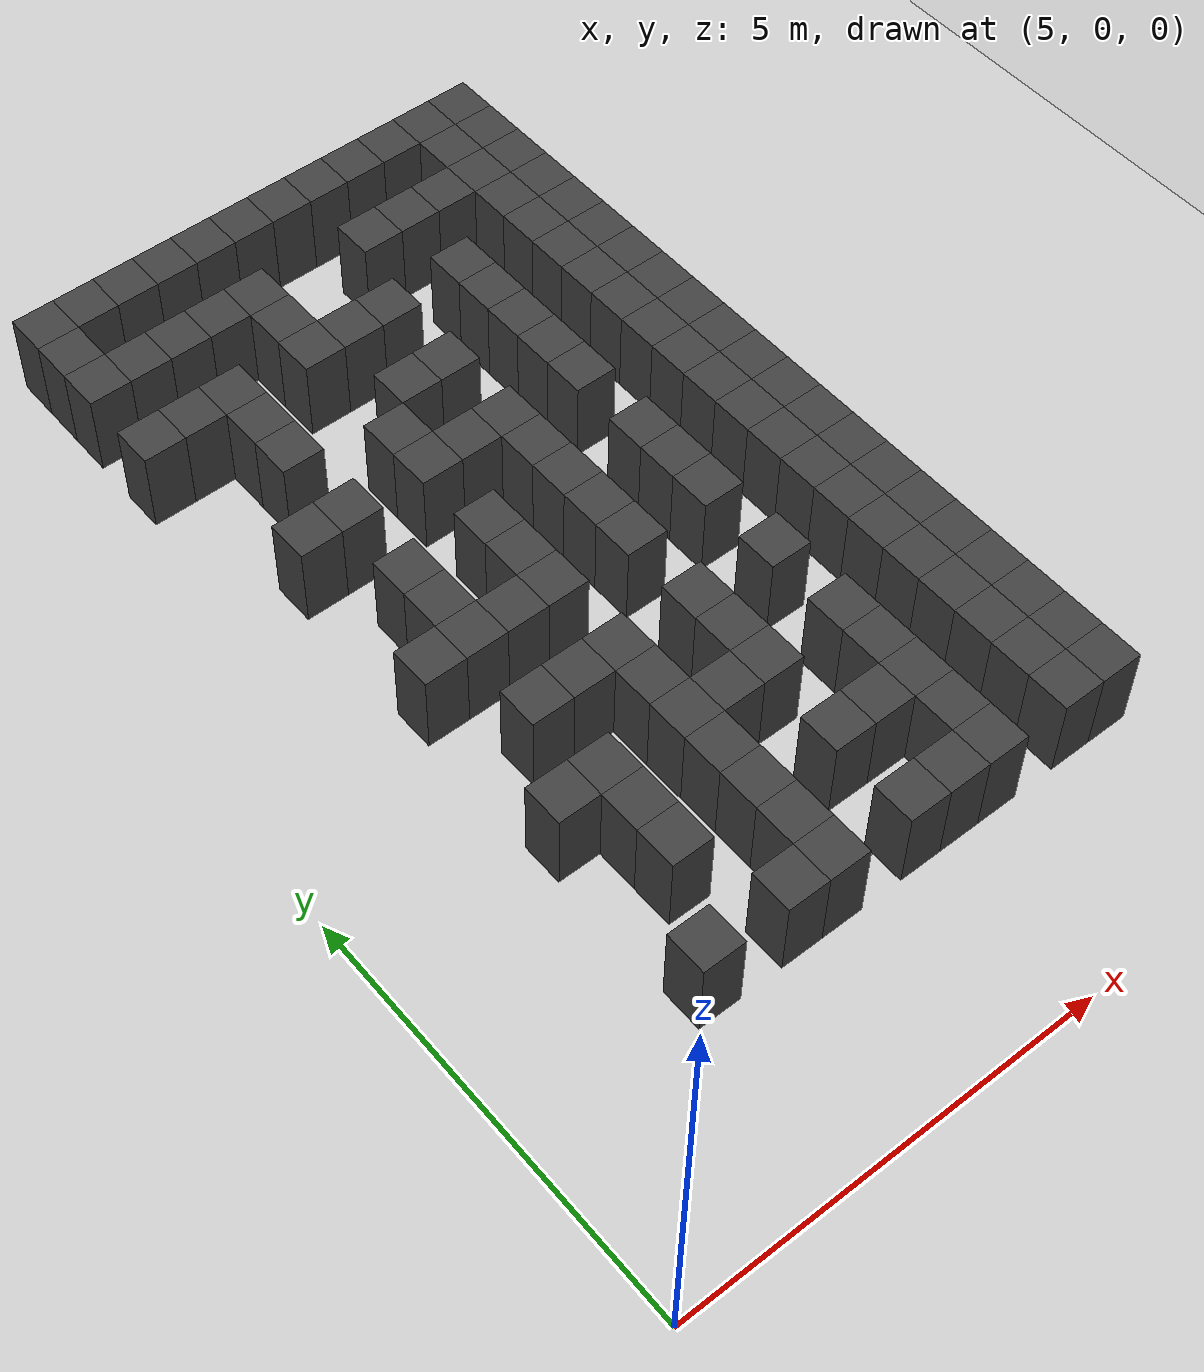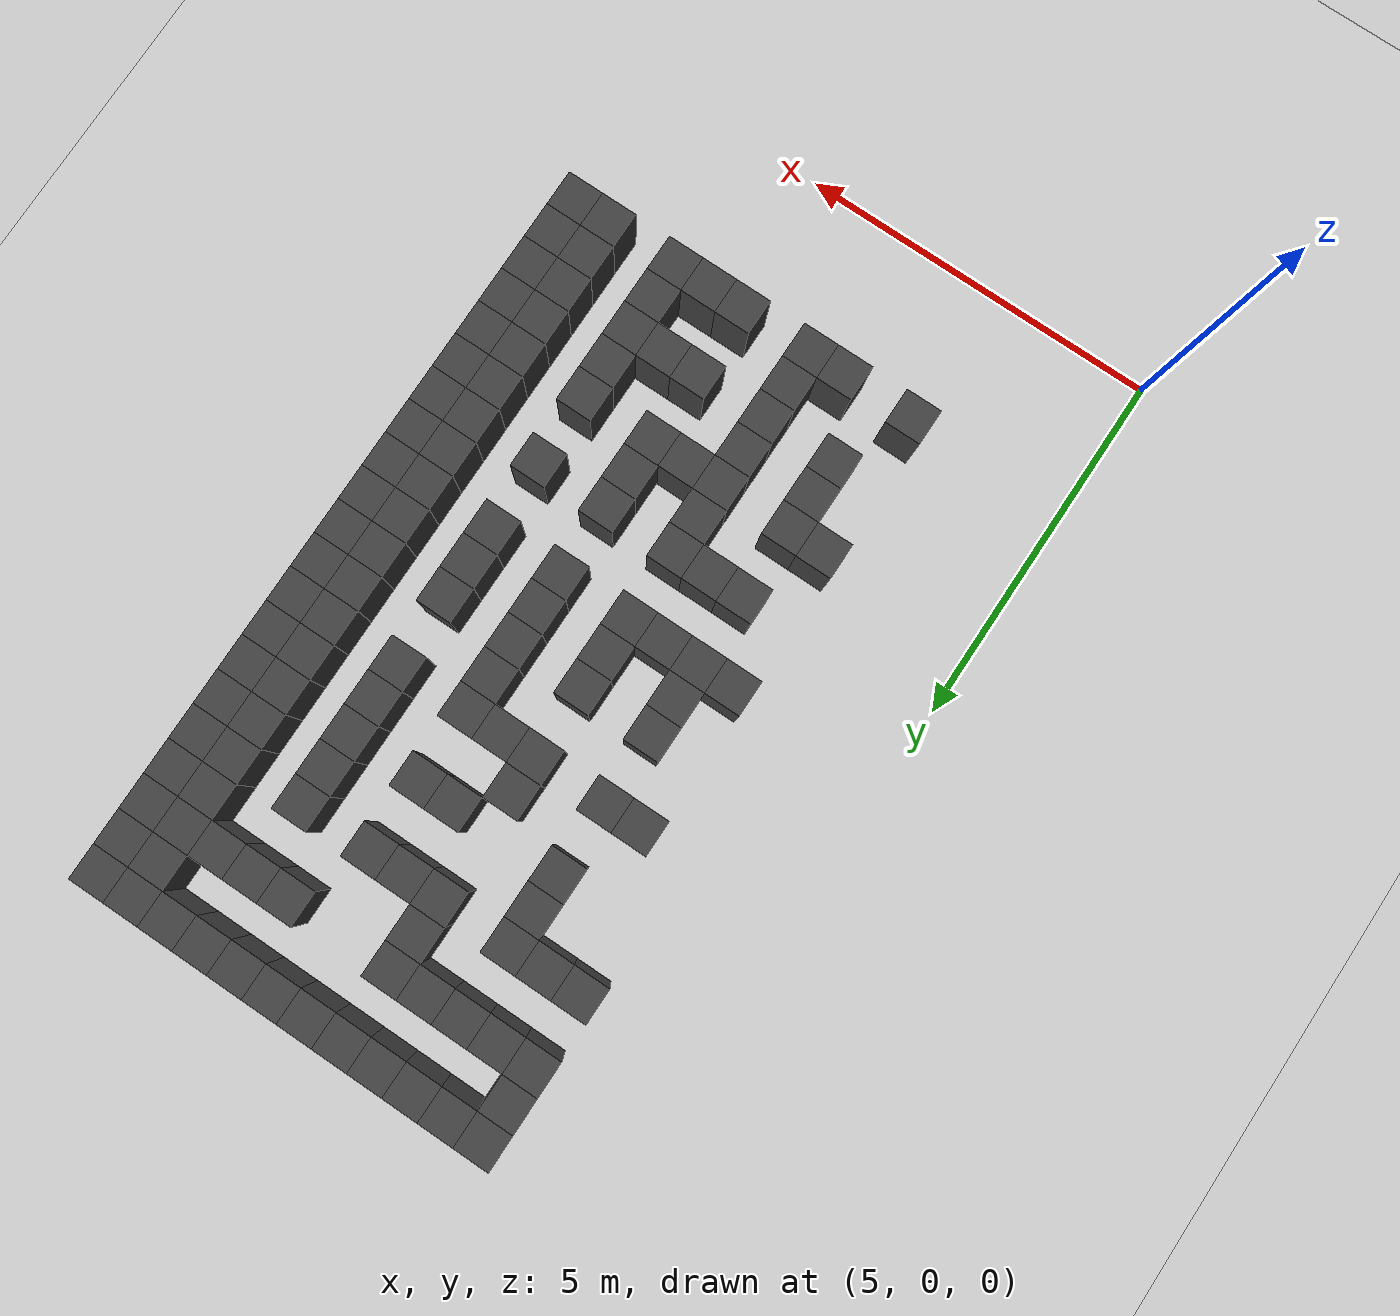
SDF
<sdf version="1.7">
 <world name="map_17508">
  <model name="ground_plane">
   <static>true</static>
   <link name="link">
    <collision name="collision">
     <geometry><plane><normal>0 0 1</normal><size>200 200</size></plane></geometry>
    </collision>
    <visual name="visual">
     <geometry><plane><normal>0 0 1</normal><size>200 200</size></plane></geometry>
     <material><ambient>0.8 0.8 0.8 1</ambient><diffuse>0.8 0.8 0.8 1</diffuse></material>
    </visual>
   </link>
  </model>
  <model name="maze_environment">
   <static>true</static>
   <link name="wall_38">
    <pose>6.750 12.250 0.500 0 0 0</pose>
    <collision name="col"><geometry><box><size>0.5 0.5 1.0</size></box></geometry></collision>
    <visual name="vis">
     <geometry><box><size>0.5 0.5 1.0</size></box></geometry>
     <material><ambient>0.15 0.15 0.15 1</ambient><diffuse>0.25 0.25 0.25 1</diffuse></material>
    </visual>
   </link>
   <link name="wall_39">
    <pose>7.250 12.250 0.500 0 0 0</pose>
    <collision name="col"><geometry><box><size>0.5 0.5 1.0</size></box></geometry></collision>
    <visual name="vis">
     <geometry><box><size>0.5 0.5 1.0</size></box></geometry>
     <material><ambient>0.15 0.15 0.15 1</ambient><diffuse>0.25 0.25 0.25 1</diffuse></material>
    </visual>
   </link>
   <link name="wall_40">
    <pose>7.750 12.250 0.500 0 0 0</pose>
    <collision name="col"><geometry><box><size>0.5 0.5 1.0</size></box></geometry></collision>
    <visual name="vis">
     <geometry><box><size>0.5 0.5 1.0</size></box></geometry>
     <material><ambient>0.15 0.15 0.15 1</ambient><diffuse>0.25 0.25 0.25 1</diffuse></material>
    </visual>
   </link>
   <link name="wall_41">
    <pose>8.250 12.250 0.500 0 0 0</pose>
    <collision name="col"><geometry><box><size>0.5 0.5 1.0</size></box></geometry></collision>
    <visual name="vis">
     <geometry><box><size>0.5 0.5 1.0</size></box></geometry>
     <material><ambient>0.15 0.15 0.15 1</ambient><diffuse>0.25 0.25 0.25 1</diffuse></material>
    </visual>
   </link>
   <link name="wall_42">
    <pose>8.750 12.250 0.500 0 0 0</pose>
    <collision name="col"><geometry><box><size>0.5 0.5 1.0</size></box></geometry></collision>
    <visual name="vis">
     <geometry><box><size>0.5 0.5 1.0</size></box></geometry>
     <material><ambient>0.15 0.15 0.15 1</ambient><diffuse>0.25 0.25 0.25 1</diffuse></material>
    </visual>
   </link>
   <link name="wall_43">
    <pose>9.250 12.250 0.500 0 0 0</pose>
    <collision name="col"><geometry><box><size>0.5 0.5 1.0</size></box></geometry></collision>
    <visual name="vis">
     <geometry><box><size>0.5 0.5 1.0</size></box></geometry>
     <material><ambient>0.15 0.15 0.15 1</ambient><diffuse>0.25 0.25 0.25 1</diffuse></material>
    </visual>
   </link>
   <link name="wall_44">
    <pose>9.750 12.250 0.500 0 0 0</pose>
    <collision name="col"><geometry><box><size>0.5 0.5 1.0</size></box></geometry></collision>
    <visual name="vis">
     <geometry><box><size>0.5 0.5 1.0</size></box></geometry>
     <material><ambient>0.15 0.15 0.15 1</ambient><diffuse>0.25 0.25 0.25 1</diffuse></material>
    </visual>
   </link>
   <link name="wall_45">
    <pose>10.250 12.250 0.500 0 0 0</pose>
    <collision name="col"><geometry><box><size>0.5 0.5 1.0</size></box></geometry></collision>
    <visual name="vis">
     <geometry><box><size>0.5 0.5 1.0</size></box></geometry>
     <material><ambient>0.15 0.15 0.15 1</ambient><diffuse>0.25 0.25 0.25 1</diffuse></material>
    </visual>
   </link>
   <link name="wall_46">
    <pose>10.750 12.250 0.500 0 0 0</pose>
    <collision name="col"><geometry><box><size>0.5 0.5 1.0</size></box></geometry></collision>
    <visual name="vis">
     <geometry><box><size>0.5 0.5 1.0</size></box></geometry>
     <material><ambient>0.15 0.15 0.15 1</ambient><diffuse>0.25 0.25 0.25 1</diffuse></material>
    </visual>
   </link>
   <link name="wall_47">
    <pose>11.250 12.250 0.500 0 0 0</pose>
    <collision name="col"><geometry><box><size>0.5 0.5 1.0</size></box></geometry></collision>
    <visual name="vis">
     <geometry><box><size>0.5 0.5 1.0</size></box></geometry>
     <material><ambient>0.15 0.15 0.15 1</ambient><diffuse>0.25 0.25 0.25 1</diffuse></material>
    </visual>
   </link>
   <link name="wall_48">
    <pose>11.750 12.250 0.500 0 0 0</pose>
    <collision name="col"><geometry><box><size>0.5 0.5 1.0</size></box></geometry></collision>
    <visual name="vis">
     <geometry><box><size>0.5 0.5 1.0</size></box></geometry>
     <material><ambient>0.15 0.15 0.15 1</ambient><diffuse>0.25 0.25 0.25 1</diffuse></material>
    </visual>
   </link>
   <link name="wall_49">
    <pose>12.250 12.250 0.500 0 0 0</pose>
    <collision name="col"><geometry><box><size>0.5 0.5 1.0</size></box></geometry></collision>
    <visual name="vis">
     <geometry><box><size>0.5 0.5 1.0</size></box></geometry>
     <material><ambient>0.15 0.15 0.15 1</ambient><diffuse>0.25 0.25 0.25 1</diffuse></material>
    </visual>
   </link>
   <link name="wall_55">
    <pose>6.750 11.750 0.500 0 0 0</pose>
    <collision name="col"><geometry><box><size>0.5 0.5 1.0</size></box></geometry></collision>
    <visual name="vis">
     <geometry><box><size>0.5 0.5 1.0</size></box></geometry>
     <material><ambient>0.15 0.15 0.15 1</ambient><diffuse>0.25 0.25 0.25 1</diffuse></material>
    </visual>
   </link>
   <link name="wall_56">
    <pose>11.750 11.750 0.500 0 0 0</pose>
    <collision name="col"><geometry><box><size>0.5 0.5 1.0</size></box></geometry></collision>
    <visual name="vis">
     <geometry><box><size>0.5 0.5 1.0</size></box></geometry>
     <material><ambient>0.15 0.15 0.15 1</ambient><diffuse>0.25 0.25 0.25 1</diffuse></material>
    </visual>
   </link>
   <link name="wall_57">
    <pose>12.250 11.750 0.500 0 0 0</pose>
    <collision name="col"><geometry><box><size>0.5 0.5 1.0</size></box></geometry></collision>
    <visual name="vis">
     <geometry><box><size>0.5 0.5 1.0</size></box></geometry>
     <material><ambient>0.15 0.15 0.15 1</ambient><diffuse>0.25 0.25 0.25 1</diffuse></material>
    </visual>
   </link>
   <link name="wall_84">
    <pose>6.750 11.250 0.500 0 0 0</pose>
    <collision name="col"><geometry><box><size>0.5 0.5 1.0</size></box></geometry></collision>
    <visual name="vis">
     <geometry><box><size>0.5 0.5 1.0</size></box></geometry>
     <material><ambient>0.15 0.15 0.15 1</ambient><diffuse>0.25 0.25 0.25 1</diffuse></material>
    </visual>
   </link>
   <link name="wall_85">
    <pose>7.250 11.250 0.500 0 0 0</pose>
    <collision name="col"><geometry><box><size>0.5 0.5 1.0</size></box></geometry></collision>
    <visual name="vis">
     <geometry><box><size>0.5 0.5 1.0</size></box></geometry>
     <material><ambient>0.15 0.15 0.15 1</ambient><diffuse>0.25 0.25 0.25 1</diffuse></material>
    </visual>
   </link>
   <link name="wall_86">
    <pose>7.750 11.250 0.500 0 0 0</pose>
    <collision name="col"><geometry><box><size>0.5 0.5 1.0</size></box></geometry></collision>
    <visual name="vis">
     <geometry><box><size>0.5 0.5 1.0</size></box></geometry>
     <material><ambient>0.15 0.15 0.15 1</ambient><diffuse>0.25 0.25 0.25 1</diffuse></material>
    </visual>
   </link>
   <link name="wall_87">
    <pose>8.250 11.250 0.500 0 0 0</pose>
    <collision name="col"><geometry><box><size>0.5 0.5 1.0</size></box></geometry></collision>
    <visual name="vis">
     <geometry><box><size>0.5 0.5 1.0</size></box></geometry>
     <material><ambient>0.15 0.15 0.15 1</ambient><diffuse>0.25 0.25 0.25 1</diffuse></material>
    </visual>
   </link>
   <link name="wall_88">
    <pose>8.750 11.250 0.500 0 0 0</pose>
    <collision name="col"><geometry><box><size>0.5 0.5 1.0</size></box></geometry></collision>
    <visual name="vis">
     <geometry><box><size>0.5 0.5 1.0</size></box></geometry>
     <material><ambient>0.15 0.15 0.15 1</ambient><diffuse>0.25 0.25 0.25 1</diffuse></material>
    </visual>
   </link>
   <link name="wall_89">
    <pose>10.250 11.250 0.500 0 0 0</pose>
    <collision name="col"><geometry><box><size>0.5 0.5 1.0</size></box></geometry></collision>
    <visual name="vis">
     <geometry><box><size>0.5 0.5 1.0</size></box></geometry>
     <material><ambient>0.15 0.15 0.15 1</ambient><diffuse>0.25 0.25 0.25 1</diffuse></material>
    </visual>
   </link>
   <link name="wall_90">
    <pose>10.750 11.250 0.500 0 0 0</pose>
    <collision name="col"><geometry><box><size>0.5 0.5 1.0</size></box></geometry></collision>
    <visual name="vis">
     <geometry><box><size>0.5 0.5 1.0</size></box></geometry>
     <material><ambient>0.15 0.15 0.15 1</ambient><diffuse>0.25 0.25 0.25 1</diffuse></material>
    </visual>
   </link>
   <link name="wall_91">
    <pose>11.250 11.250 0.500 0 0 0</pose>
    <collision name="col"><geometry><box><size>0.5 0.5 1.0</size></box></geometry></collision>
    <visual name="vis">
     <geometry><box><size>0.5 0.5 1.0</size></box></geometry>
     <material><ambient>0.15 0.15 0.15 1</ambient><diffuse>0.25 0.25 0.25 1</diffuse></material>
    </visual>
   </link>
   <link name="wall_92">
    <pose>11.750 11.250 0.500 0 0 0</pose>
    <collision name="col"><geometry><box><size>0.5 0.5 1.0</size></box></geometry></collision>
    <visual name="vis">
     <geometry><box><size>0.5 0.5 1.0</size></box></geometry>
     <material><ambient>0.15 0.15 0.15 1</ambient><diffuse>0.25 0.25 0.25 1</diffuse></material>
    </visual>
   </link>
   <link name="wall_93">
    <pose>12.250 11.250 0.500 0 0 0</pose>
    <collision name="col"><geometry><box><size>0.5 0.5 1.0</size></box></geometry></collision>
    <visual name="vis">
     <geometry><box><size>0.5 0.5 1.0</size></box></geometry>
     <material><ambient>0.15 0.15 0.15 1</ambient><diffuse>0.25 0.25 0.25 1</diffuse></material>
    </visual>
   </link>
   <link name="wall_102">
    <pose>8.750 10.750 0.500 0 0 0</pose>
    <collision name="col"><geometry><box><size>0.5 0.5 1.0</size></box></geometry></collision>
    <visual name="vis">
     <geometry><box><size>0.5 0.5 1.0</size></box></geometry>
     <material><ambient>0.15 0.15 0.15 1</ambient><diffuse>0.25 0.25 0.25 1</diffuse></material>
    </visual>
   </link>
   <link name="wall_103">
    <pose>11.750 10.750 0.500 0 0 0</pose>
    <collision name="col"><geometry><box><size>0.5 0.5 1.0</size></box></geometry></collision>
    <visual name="vis">
     <geometry><box><size>0.5 0.5 1.0</size></box></geometry>
     <material><ambient>0.15 0.15 0.15 1</ambient><diffuse>0.25 0.25 0.25 1</diffuse></material>
    </visual>
   </link>
   <link name="wall_104">
    <pose>12.250 10.750 0.500 0 0 0</pose>
    <collision name="col"><geometry><box><size>0.5 0.5 1.0</size></box></geometry></collision>
    <visual name="vis">
     <geometry><box><size>0.5 0.5 1.0</size></box></geometry>
     <material><ambient>0.15 0.15 0.15 1</ambient><diffuse>0.25 0.25 0.25 1</diffuse></material>
    </visual>
   </link>
   <link name="wall_137">
    <pose>6.750 10.250 0.500 0 0 0</pose>
    <collision name="col"><geometry><box><size>0.5 0.5 1.0</size></box></geometry></collision>
    <visual name="vis">
     <geometry><box><size>0.5 0.5 1.0</size></box></geometry>
     <material><ambient>0.15 0.15 0.15 1</ambient><diffuse>0.25 0.25 0.25 1</diffuse></material>
    </visual>
   </link>
   <link name="wall_138">
    <pose>7.250 10.250 0.500 0 0 0</pose>
    <collision name="col"><geometry><box><size>0.5 0.5 1.0</size></box></geometry></collision>
    <visual name="vis">
     <geometry><box><size>0.5 0.5 1.0</size></box></geometry>
     <material><ambient>0.15 0.15 0.15 1</ambient><diffuse>0.25 0.25 0.25 1</diffuse></material>
    </visual>
   </link>
   <link name="wall_139">
    <pose>7.750 10.250 0.500 0 0 0</pose>
    <collision name="col"><geometry><box><size>0.5 0.5 1.0</size></box></geometry></collision>
    <visual name="vis">
     <geometry><box><size>0.5 0.5 1.0</size></box></geometry>
     <material><ambient>0.15 0.15 0.15 1</ambient><diffuse>0.25 0.25 0.25 1</diffuse></material>
    </visual>
   </link>
   <link name="wall_140">
    <pose>8.750 10.250 0.500 0 0 0</pose>
    <collision name="col"><geometry><box><size>0.5 0.5 1.0</size></box></geometry></collision>
    <visual name="vis">
     <geometry><box><size>0.5 0.5 1.0</size></box></geometry>
     <material><ambient>0.15 0.15 0.15 1</ambient><diffuse>0.25 0.25 0.25 1</diffuse></material>
    </visual>
   </link>
   <link name="wall_141">
    <pose>9.250 10.250 0.500 0 0 0</pose>
    <collision name="col"><geometry><box><size>0.5 0.5 1.0</size></box></geometry></collision>
    <visual name="vis">
     <geometry><box><size>0.5 0.5 1.0</size></box></geometry>
     <material><ambient>0.15 0.15 0.15 1</ambient><diffuse>0.25 0.25 0.25 1</diffuse></material>
    </visual>
   </link>
   <link name="wall_142">
    <pose>9.750 10.250 0.500 0 0 0</pose>
    <collision name="col"><geometry><box><size>0.5 0.5 1.0</size></box></geometry></collision>
    <visual name="vis">
     <geometry><box><size>0.5 0.5 1.0</size></box></geometry>
     <material><ambient>0.15 0.15 0.15 1</ambient><diffuse>0.25 0.25 0.25 1</diffuse></material>
    </visual>
   </link>
   <link name="wall_143">
    <pose>10.750 10.250 0.500 0 0 0</pose>
    <collision name="col"><geometry><box><size>0.5 0.5 1.0</size></box></geometry></collision>
    <visual name="vis">
     <geometry><box><size>0.5 0.5 1.0</size></box></geometry>
     <material><ambient>0.15 0.15 0.15 1</ambient><diffuse>0.25 0.25 0.25 1</diffuse></material>
    </visual>
   </link>
   <link name="wall_144">
    <pose>11.750 10.250 0.500 0 0 0</pose>
    <collision name="col"><geometry><box><size>0.5 0.5 1.0</size></box></geometry></collision>
    <visual name="vis">
     <geometry><box><size>0.5 0.5 1.0</size></box></geometry>
     <material><ambient>0.15 0.15 0.15 1</ambient><diffuse>0.25 0.25 0.25 1</diffuse></material>
    </visual>
   </link>
   <link name="wall_145">
    <pose>12.250 10.250 0.500 0 0 0</pose>
    <collision name="col"><geometry><box><size>0.5 0.5 1.0</size></box></geometry></collision>
    <visual name="vis">
     <geometry><box><size>0.5 0.5 1.0</size></box></geometry>
     <material><ambient>0.15 0.15 0.15 1</ambient><diffuse>0.25 0.25 0.25 1</diffuse></material>
    </visual>
   </link>
   <link name="wall_155">
    <pose>7.750 9.750 0.500 0 0 0</pose>
    <collision name="col"><geometry><box><size>0.5 0.5 1.0</size></box></geometry></collision>
    <visual name="vis">
     <geometry><box><size>0.5 0.5 1.0</size></box></geometry>
     <material><ambient>0.15 0.15 0.15 1</ambient><diffuse>0.25 0.25 0.25 1</diffuse></material>
    </visual>
   </link>
   <link name="wall_156">
    <pose>10.750 9.750 0.500 0 0 0</pose>
    <collision name="col"><geometry><box><size>0.5 0.5 1.0</size></box></geometry></collision>
    <visual name="vis">
     <geometry><box><size>0.5 0.5 1.0</size></box></geometry>
     <material><ambient>0.15 0.15 0.15 1</ambient><diffuse>0.25 0.25 0.25 1</diffuse></material>
    </visual>
   </link>
   <link name="wall_157">
    <pose>11.750 9.750 0.500 0 0 0</pose>
    <collision name="col"><geometry><box><size>0.5 0.5 1.0</size></box></geometry></collision>
    <visual name="vis">
     <geometry><box><size>0.5 0.5 1.0</size></box></geometry>
     <material><ambient>0.15 0.15 0.15 1</ambient><diffuse>0.25 0.25 0.25 1</diffuse></material>
    </visual>
   </link>
   <link name="wall_158">
    <pose>12.250 9.750 0.500 0 0 0</pose>
    <collision name="col"><geometry><box><size>0.5 0.5 1.0</size></box></geometry></collision>
    <visual name="vis">
     <geometry><box><size>0.5 0.5 1.0</size></box></geometry>
     <material><ambient>0.15 0.15 0.15 1</ambient><diffuse>0.25 0.25 0.25 1</diffuse></material>
    </visual>
   </link>
   <link name="wall_185">
    <pose>7.750 9.250 0.500 0 0 0</pose>
    <collision name="col"><geometry><box><size>0.5 0.5 1.0</size></box></geometry></collision>
    <visual name="vis">
     <geometry><box><size>0.5 0.5 1.0</size></box></geometry>
     <material><ambient>0.15 0.15 0.15 1</ambient><diffuse>0.25 0.25 0.25 1</diffuse></material>
    </visual>
   </link>
   <link name="wall_186">
    <pose>9.250 9.250 0.500 0 0 0</pose>
    <collision name="col"><geometry><box><size>0.5 0.5 1.0</size></box></geometry></collision>
    <visual name="vis">
     <geometry><box><size>0.5 0.5 1.0</size></box></geometry>
     <material><ambient>0.15 0.15 0.15 1</ambient><diffuse>0.25 0.25 0.25 1</diffuse></material>
    </visual>
   </link>
   <link name="wall_187">
    <pose>9.750 9.250 0.500 0 0 0</pose>
    <collision name="col"><geometry><box><size>0.5 0.5 1.0</size></box></geometry></collision>
    <visual name="vis">
     <geometry><box><size>0.5 0.5 1.0</size></box></geometry>
     <material><ambient>0.15 0.15 0.15 1</ambient><diffuse>0.25 0.25 0.25 1</diffuse></material>
    </visual>
   </link>
   <link name="wall_188">
    <pose>10.750 9.250 0.500 0 0 0</pose>
    <collision name="col"><geometry><box><size>0.5 0.5 1.0</size></box></geometry></collision>
    <visual name="vis">
     <geometry><box><size>0.5 0.5 1.0</size></box></geometry>
     <material><ambient>0.15 0.15 0.15 1</ambient><diffuse>0.25 0.25 0.25 1</diffuse></material>
    </visual>
   </link>
   <link name="wall_189">
    <pose>11.750 9.250 0.500 0 0 0</pose>
    <collision name="col"><geometry><box><size>0.5 0.5 1.0</size></box></geometry></collision>
    <visual name="vis">
     <geometry><box><size>0.5 0.5 1.0</size></box></geometry>
     <material><ambient>0.15 0.15 0.15 1</ambient><diffuse>0.25 0.25 0.25 1</diffuse></material>
    </visual>
   </link>
   <link name="wall_190">
    <pose>12.250 9.250 0.500 0 0 0</pose>
    <collision name="col"><geometry><box><size>0.5 0.5 1.0</size></box></geometry></collision>
    <visual name="vis">
     <geometry><box><size>0.5 0.5 1.0</size></box></geometry>
     <material><ambient>0.15 0.15 0.15 1</ambient><diffuse>0.25 0.25 0.25 1</diffuse></material>
    </visual>
   </link>
   <link name="wall_201">
    <pose>8.750 8.750 0.500 0 0 0</pose>
    <collision name="col"><geometry><box><size>0.5 0.5 1.0</size></box></geometry></collision>
    <visual name="vis">
     <geometry><box><size>0.5 0.5 1.0</size></box></geometry>
     <material><ambient>0.15 0.15 0.15 1</ambient><diffuse>0.25 0.25 0.25 1</diffuse></material>
    </visual>
   </link>
   <link name="wall_202">
    <pose>10.750 8.750 0.500 0 0 0</pose>
    <collision name="col"><geometry><box><size>0.5 0.5 1.0</size></box></geometry></collision>
    <visual name="vis">
     <geometry><box><size>0.5 0.5 1.0</size></box></geometry>
     <material><ambient>0.15 0.15 0.15 1</ambient><diffuse>0.25 0.25 0.25 1</diffuse></material>
    </visual>
   </link>
   <link name="wall_203">
    <pose>11.750 8.750 0.500 0 0 0</pose>
    <collision name="col"><geometry><box><size>0.5 0.5 1.0</size></box></geometry></collision>
    <visual name="vis">
     <geometry><box><size>0.5 0.5 1.0</size></box></geometry>
     <material><ambient>0.15 0.15 0.15 1</ambient><diffuse>0.25 0.25 0.25 1</diffuse></material>
    </visual>
   </link>
   <link name="wall_204">
    <pose>12.250 8.750 0.500 0 0 0</pose>
    <collision name="col"><geometry><box><size>0.5 0.5 1.0</size></box></geometry></collision>
    <visual name="vis">
     <geometry><box><size>0.5 0.5 1.0</size></box></geometry>
     <material><ambient>0.15 0.15 0.15 1</ambient><diffuse>0.25 0.25 0.25 1</diffuse></material>
    </visual>
   </link>
   <link name="wall_234">
    <pose>7.250 8.250 0.500 0 0 0</pose>
    <collision name="col"><geometry><box><size>0.5 0.5 1.0</size></box></geometry></collision>
    <visual name="vis">
     <geometry><box><size>0.5 0.5 1.0</size></box></geometry>
     <material><ambient>0.15 0.15 0.15 1</ambient><diffuse>0.25 0.25 0.25 1</diffuse></material>
    </visual>
   </link>
   <link name="wall_235">
    <pose>7.750 8.250 0.500 0 0 0</pose>
    <collision name="col"><geometry><box><size>0.5 0.5 1.0</size></box></geometry></collision>
    <visual name="vis">
     <geometry><box><size>0.5 0.5 1.0</size></box></geometry>
     <material><ambient>0.15 0.15 0.15 1</ambient><diffuse>0.25 0.25 0.25 1</diffuse></material>
    </visual>
   </link>
   <link name="wall_236">
    <pose>8.750 8.250 0.500 0 0 0</pose>
    <collision name="col"><geometry><box><size>0.5 0.5 1.0</size></box></geometry></collision>
    <visual name="vis">
     <geometry><box><size>0.5 0.5 1.0</size></box></geometry>
     <material><ambient>0.15 0.15 0.15 1</ambient><diffuse>0.25 0.25 0.25 1</diffuse></material>
    </visual>
   </link>
   <link name="wall_237">
    <pose>9.250 8.250 0.500 0 0 0</pose>
    <collision name="col"><geometry><box><size>0.5 0.5 1.0</size></box></geometry></collision>
    <visual name="vis">
     <geometry><box><size>0.5 0.5 1.0</size></box></geometry>
     <material><ambient>0.15 0.15 0.15 1</ambient><diffuse>0.25 0.25 0.25 1</diffuse></material>
    </visual>
   </link>
   <link name="wall_238">
    <pose>9.750 8.250 0.500 0 0 0</pose>
    <collision name="col"><geometry><box><size>0.5 0.5 1.0</size></box></geometry></collision>
    <visual name="vis">
     <geometry><box><size>0.5 0.5 1.0</size></box></geometry>
     <material><ambient>0.15 0.15 0.15 1</ambient><diffuse>0.25 0.25 0.25 1</diffuse></material>
    </visual>
   </link>
   <link name="wall_239">
    <pose>10.750 8.250 0.500 0 0 0</pose>
    <collision name="col"><geometry><box><size>0.5 0.5 1.0</size></box></geometry></collision>
    <visual name="vis">
     <geometry><box><size>0.5 0.5 1.0</size></box></geometry>
     <material><ambient>0.15 0.15 0.15 1</ambient><diffuse>0.25 0.25 0.25 1</diffuse></material>
    </visual>
   </link>
   <link name="wall_240">
    <pose>11.750 8.250 0.500 0 0 0</pose>
    <collision name="col"><geometry><box><size>0.5 0.5 1.0</size></box></geometry></collision>
    <visual name="vis">
     <geometry><box><size>0.5 0.5 1.0</size></box></geometry>
     <material><ambient>0.15 0.15 0.15 1</ambient><diffuse>0.25 0.25 0.25 1</diffuse></material>
    </visual>
   </link>
   <link name="wall_241">
    <pose>12.250 8.250 0.500 0 0 0</pose>
    <collision name="col"><geometry><box><size>0.5 0.5 1.0</size></box></geometry></collision>
    <visual name="vis">
     <geometry><box><size>0.5 0.5 1.0</size></box></geometry>
     <material><ambient>0.15 0.15 0.15 1</ambient><diffuse>0.25 0.25 0.25 1</diffuse></material>
    </visual>
   </link>
   <link name="wall_253">
    <pose>9.750 7.750 0.500 0 0 0</pose>
    <collision name="col"><geometry><box><size>0.5 0.5 1.0</size></box></geometry></collision>
    <visual name="vis">
     <geometry><box><size>0.5 0.5 1.0</size></box></geometry>
     <material><ambient>0.15 0.15 0.15 1</ambient><diffuse>0.25 0.25 0.25 1</diffuse></material>
    </visual>
   </link>
   <link name="wall_254">
    <pose>11.750 7.750 0.500 0 0 0</pose>
    <collision name="col"><geometry><box><size>0.5 0.5 1.0</size></box></geometry></collision>
    <visual name="vis">
     <geometry><box><size>0.5 0.5 1.0</size></box></geometry>
     <material><ambient>0.15 0.15 0.15 1</ambient><diffuse>0.25 0.25 0.25 1</diffuse></material>
    </visual>
   </link>
   <link name="wall_255">
    <pose>12.250 7.750 0.500 0 0 0</pose>
    <collision name="col"><geometry><box><size>0.5 0.5 1.0</size></box></geometry></collision>
    <visual name="vis">
     <geometry><box><size>0.5 0.5 1.0</size></box></geometry>
     <material><ambient>0.15 0.15 0.15 1</ambient><diffuse>0.25 0.25 0.25 1</diffuse></material>
    </visual>
   </link>
   <link name="wall_281">
    <pose>7.750 7.250 0.500 0 0 0</pose>
    <collision name="col"><geometry><box><size>0.5 0.5 1.0</size></box></geometry></collision>
    <visual name="vis">
     <geometry><box><size>0.5 0.5 1.0</size></box></geometry>
     <material><ambient>0.15 0.15 0.15 1</ambient><diffuse>0.25 0.25 0.25 1</diffuse></material>
    </visual>
   </link>
   <link name="wall_282">
    <pose>8.750 7.250 0.500 0 0 0</pose>
    <collision name="col"><geometry><box><size>0.5 0.5 1.0</size></box></geometry></collision>
    <visual name="vis">
     <geometry><box><size>0.5 0.5 1.0</size></box></geometry>
     <material><ambient>0.15 0.15 0.15 1</ambient><diffuse>0.25 0.25 0.25 1</diffuse></material>
    </visual>
   </link>
   <link name="wall_283">
    <pose>9.750 7.250 0.500 0 0 0</pose>
    <collision name="col"><geometry><box><size>0.5 0.5 1.0</size></box></geometry></collision>
    <visual name="vis">
     <geometry><box><size>0.5 0.5 1.0</size></box></geometry>
     <material><ambient>0.15 0.15 0.15 1</ambient><diffuse>0.25 0.25 0.25 1</diffuse></material>
    </visual>
   </link>
   <link name="wall_284">
    <pose>10.750 7.250 0.500 0 0 0</pose>
    <collision name="col"><geometry><box><size>0.5 0.5 1.0</size></box></geometry></collision>
    <visual name="vis">
     <geometry><box><size>0.5 0.5 1.0</size></box></geometry>
     <material><ambient>0.15 0.15 0.15 1</ambient><diffuse>0.25 0.25 0.25 1</diffuse></material>
    </visual>
   </link>
   <link name="wall_285">
    <pose>11.750 7.250 0.500 0 0 0</pose>
    <collision name="col"><geometry><box><size>0.5 0.5 1.0</size></box></geometry></collision>
    <visual name="vis">
     <geometry><box><size>0.5 0.5 1.0</size></box></geometry>
     <material><ambient>0.15 0.15 0.15 1</ambient><diffuse>0.25 0.25 0.25 1</diffuse></material>
    </visual>
   </link>
   <link name="wall_286">
    <pose>12.250 7.250 0.500 0 0 0</pose>
    <collision name="col"><geometry><box><size>0.5 0.5 1.0</size></box></geometry></collision>
    <visual name="vis">
     <geometry><box><size>0.5 0.5 1.0</size></box></geometry>
     <material><ambient>0.15 0.15 0.15 1</ambient><diffuse>0.25 0.25 0.25 1</diffuse></material>
    </visual>
   </link>
   <link name="wall_300">
    <pose>7.750 6.750 0.500 0 0 0</pose>
    <collision name="col"><geometry><box><size>0.5 0.5 1.0</size></box></geometry></collision>
    <visual name="vis">
     <geometry><box><size>0.5 0.5 1.0</size></box></geometry>
     <material><ambient>0.15 0.15 0.15 1</ambient><diffuse>0.25 0.25 0.25 1</diffuse></material>
    </visual>
   </link>
   <link name="wall_301">
    <pose>8.750 6.750 0.500 0 0 0</pose>
    <collision name="col"><geometry><box><size>0.5 0.5 1.0</size></box></geometry></collision>
    <visual name="vis">
     <geometry><box><size>0.5 0.5 1.0</size></box></geometry>
     <material><ambient>0.15 0.15 0.15 1</ambient><diffuse>0.25 0.25 0.25 1</diffuse></material>
    </visual>
   </link>
   <link name="wall_302">
    <pose>9.750 6.750 0.500 0 0 0</pose>
    <collision name="col"><geometry><box><size>0.5 0.5 1.0</size></box></geometry></collision>
    <visual name="vis">
     <geometry><box><size>0.5 0.5 1.0</size></box></geometry>
     <material><ambient>0.15 0.15 0.15 1</ambient><diffuse>0.25 0.25 0.25 1</diffuse></material>
    </visual>
   </link>
   <link name="wall_303">
    <pose>10.750 6.750 0.500 0 0 0</pose>
    <collision name="col"><geometry><box><size>0.5 0.5 1.0</size></box></geometry></collision>
    <visual name="vis">
     <geometry><box><size>0.5 0.5 1.0</size></box></geometry>
     <material><ambient>0.15 0.15 0.15 1</ambient><diffuse>0.25 0.25 0.25 1</diffuse></material>
    </visual>
   </link>
   <link name="wall_304">
    <pose>11.750 6.750 0.500 0 0 0</pose>
    <collision name="col"><geometry><box><size>0.5 0.5 1.0</size></box></geometry></collision>
    <visual name="vis">
     <geometry><box><size>0.5 0.5 1.0</size></box></geometry>
     <material><ambient>0.15 0.15 0.15 1</ambient><diffuse>0.25 0.25 0.25 1</diffuse></material>
    </visual>
   </link>
   <link name="wall_305">
    <pose>12.250 6.750 0.500 0 0 0</pose>
    <collision name="col"><geometry><box><size>0.5 0.5 1.0</size></box></geometry></collision>
    <visual name="vis">
     <geometry><box><size>0.5 0.5 1.0</size></box></geometry>
     <material><ambient>0.15 0.15 0.15 1</ambient><diffuse>0.25 0.25 0.25 1</diffuse></material>
    </visual>
   </link>
   <link name="wall_328">
    <pose>7.250 6.250 0.500 0 0 0</pose>
    <collision name="col"><geometry><box><size>0.5 0.5 1.0</size></box></geometry></collision>
    <visual name="vis">
     <geometry><box><size>0.5 0.5 1.0</size></box></geometry>
     <material><ambient>0.15 0.15 0.15 1</ambient><diffuse>0.25 0.25 0.25 1</diffuse></material>
    </visual>
   </link>
   <link name="wall_329">
    <pose>7.750 6.250 0.500 0 0 0</pose>
    <collision name="col"><geometry><box><size>0.5 0.5 1.0</size></box></geometry></collision>
    <visual name="vis">
     <geometry><box><size>0.5 0.5 1.0</size></box></geometry>
     <material><ambient>0.15 0.15 0.15 1</ambient><diffuse>0.25 0.25 0.25 1</diffuse></material>
    </visual>
   </link>
   <link name="wall_330">
    <pose>8.250 6.250 0.500 0 0 0</pose>
    <collision name="col"><geometry><box><size>0.5 0.5 1.0</size></box></geometry></collision>
    <visual name="vis">
     <geometry><box><size>0.5 0.5 1.0</size></box></geometry>
     <material><ambient>0.15 0.15 0.15 1</ambient><diffuse>0.25 0.25 0.25 1</diffuse></material>
    </visual>
   </link>
   <link name="wall_331">
    <pose>8.750 6.250 0.500 0 0 0</pose>
    <collision name="col"><geometry><box><size>0.5 0.5 1.0</size></box></geometry></collision>
    <visual name="vis">
     <geometry><box><size>0.5 0.5 1.0</size></box></geometry>
     <material><ambient>0.15 0.15 0.15 1</ambient><diffuse>0.25 0.25 0.25 1</diffuse></material>
    </visual>
   </link>
   <link name="wall_332">
    <pose>9.750 6.250 0.500 0 0 0</pose>
    <collision name="col"><geometry><box><size>0.5 0.5 1.0</size></box></geometry></collision>
    <visual name="vis">
     <geometry><box><size>0.5 0.5 1.0</size></box></geometry>
     <material><ambient>0.15 0.15 0.15 1</ambient><diffuse>0.25 0.25 0.25 1</diffuse></material>
    </visual>
   </link>
   <link name="wall_333">
    <pose>10.750 6.250 0.500 0 0 0</pose>
    <collision name="col"><geometry><box><size>0.5 0.5 1.0</size></box></geometry></collision>
    <visual name="vis">
     <geometry><box><size>0.5 0.5 1.0</size></box></geometry>
     <material><ambient>0.15 0.15 0.15 1</ambient><diffuse>0.25 0.25 0.25 1</diffuse></material>
    </visual>
   </link>
   <link name="wall_334">
    <pose>11.750 6.250 0.500 0 0 0</pose>
    <collision name="col"><geometry><box><size>0.5 0.5 1.0</size></box></geometry></collision>
    <visual name="vis">
     <geometry><box><size>0.5 0.5 1.0</size></box></geometry>
     <material><ambient>0.15 0.15 0.15 1</ambient><diffuse>0.25 0.25 0.25 1</diffuse></material>
    </visual>
   </link>
   <link name="wall_335">
    <pose>12.250 6.250 0.500 0 0 0</pose>
    <collision name="col"><geometry><box><size>0.5 0.5 1.0</size></box></geometry></collision>
    <visual name="vis">
     <geometry><box><size>0.5 0.5 1.0</size></box></geometry>
     <material><ambient>0.15 0.15 0.15 1</ambient><diffuse>0.25 0.25 0.25 1</diffuse></material>
    </visual>
   </link>
   <link name="wall_349">
    <pose>11.750 5.750 0.500 0 0 0</pose>
    <collision name="col"><geometry><box><size>0.5 0.5 1.0</size></box></geometry></collision>
    <visual name="vis">
     <geometry><box><size>0.5 0.5 1.0</size></box></geometry>
     <material><ambient>0.15 0.15 0.15 1</ambient><diffuse>0.25 0.25 0.25 1</diffuse></material>
    </visual>
   </link>
   <link name="wall_350">
    <pose>12.250 5.750 0.500 0 0 0</pose>
    <collision name="col"><geometry><box><size>0.5 0.5 1.0</size></box></geometry></collision>
    <visual name="vis">
     <geometry><box><size>0.5 0.5 1.0</size></box></geometry>
     <material><ambient>0.15 0.15 0.15 1</ambient><diffuse>0.25 0.25 0.25 1</diffuse></material>
    </visual>
   </link>
   <link name="wall_376">
    <pose>7.750 5.250 0.500 0 0 0</pose>
    <collision name="col"><geometry><box><size>0.5 0.5 1.0</size></box></geometry></collision>
    <visual name="vis">
     <geometry><box><size>0.5 0.5 1.0</size></box></geometry>
     <material><ambient>0.15 0.15 0.15 1</ambient><diffuse>0.25 0.25 0.25 1</diffuse></material>
    </visual>
   </link>
   <link name="wall_377">
    <pose>8.250 5.250 0.500 0 0 0</pose>
    <collision name="col"><geometry><box><size>0.5 0.5 1.0</size></box></geometry></collision>
    <visual name="vis">
     <geometry><box><size>0.5 0.5 1.0</size></box></geometry>
     <material><ambient>0.15 0.15 0.15 1</ambient><diffuse>0.25 0.25 0.25 1</diffuse></material>
    </visual>
   </link>
   <link name="wall_378">
    <pose>8.750 5.250 0.500 0 0 0</pose>
    <collision name="col"><geometry><box><size>0.5 0.5 1.0</size></box></geometry></collision>
    <visual name="vis">
     <geometry><box><size>0.5 0.5 1.0</size></box></geometry>
     <material><ambient>0.15 0.15 0.15 1</ambient><diffuse>0.25 0.25 0.25 1</diffuse></material>
    </visual>
   </link>
   <link name="wall_379">
    <pose>9.750 5.250 0.500 0 0 0</pose>
    <collision name="col"><geometry><box><size>0.5 0.5 1.0</size></box></geometry></collision>
    <visual name="vis">
     <geometry><box><size>0.5 0.5 1.0</size></box></geometry>
     <material><ambient>0.15 0.15 0.15 1</ambient><diffuse>0.25 0.25 0.25 1</diffuse></material>
    </visual>
   </link>
   <link name="wall_380">
    <pose>10.750 5.250 0.500 0 0 0</pose>
    <collision name="col"><geometry><box><size>0.5 0.5 1.0</size></box></geometry></collision>
    <visual name="vis">
     <geometry><box><size>0.5 0.5 1.0</size></box></geometry>
     <material><ambient>0.15 0.15 0.15 1</ambient><diffuse>0.25 0.25 0.25 1</diffuse></material>
    </visual>
   </link>
   <link name="wall_381">
    <pose>11.750 5.250 0.500 0 0 0</pose>
    <collision name="col"><geometry><box><size>0.5 0.5 1.0</size></box></geometry></collision>
    <visual name="vis">
     <geometry><box><size>0.5 0.5 1.0</size></box></geometry>
     <material><ambient>0.15 0.15 0.15 1</ambient><diffuse>0.25 0.25 0.25 1</diffuse></material>
    </visual>
   </link>
   <link name="wall_382">
    <pose>12.250 5.250 0.500 0 0 0</pose>
    <collision name="col"><geometry><box><size>0.5 0.5 1.0</size></box></geometry></collision>
    <visual name="vis">
     <geometry><box><size>0.5 0.5 1.0</size></box></geometry>
     <material><ambient>0.15 0.15 0.15 1</ambient><diffuse>0.25 0.25 0.25 1</diffuse></material>
    </visual>
   </link>
   <link name="wall_394">
    <pose>8.750 4.750 0.500 0 0 0</pose>
    <collision name="col"><geometry><box><size>0.5 0.5 1.0</size></box></geometry></collision>
    <visual name="vis">
     <geometry><box><size>0.5 0.5 1.0</size></box></geometry>
     <material><ambient>0.15 0.15 0.15 1</ambient><diffuse>0.25 0.25 0.25 1</diffuse></material>
    </visual>
   </link>
   <link name="wall_395">
    <pose>9.750 4.750 0.500 0 0 0</pose>
    <collision name="col"><geometry><box><size>0.5 0.5 1.0</size></box></geometry></collision>
    <visual name="vis">
     <geometry><box><size>0.5 0.5 1.0</size></box></geometry>
     <material><ambient>0.15 0.15 0.15 1</ambient><diffuse>0.25 0.25 0.25 1</diffuse></material>
    </visual>
   </link>
   <link name="wall_396">
    <pose>11.750 4.750 0.500 0 0 0</pose>
    <collision name="col"><geometry><box><size>0.5 0.5 1.0</size></box></geometry></collision>
    <visual name="vis">
     <geometry><box><size>0.5 0.5 1.0</size></box></geometry>
     <material><ambient>0.15 0.15 0.15 1</ambient><diffuse>0.25 0.25 0.25 1</diffuse></material>
    </visual>
   </link>
   <link name="wall_397">
    <pose>12.250 4.750 0.500 0 0 0</pose>
    <collision name="col"><geometry><box><size>0.5 0.5 1.0</size></box></geometry></collision>
    <visual name="vis">
     <geometry><box><size>0.5 0.5 1.0</size></box></geometry>
     <material><ambient>0.15 0.15 0.15 1</ambient><diffuse>0.25 0.25 0.25 1</diffuse></material>
    </visual>
   </link>
   <link name="wall_422">
    <pose>7.250 4.250 0.500 0 0 0</pose>
    <collision name="col"><geometry><box><size>0.5 0.5 1.0</size></box></geometry></collision>
    <visual name="vis">
     <geometry><box><size>0.5 0.5 1.0</size></box></geometry>
     <material><ambient>0.15 0.15 0.15 1</ambient><diffuse>0.25 0.25 0.25 1</diffuse></material>
    </visual>
   </link>
   <link name="wall_423">
    <pose>7.750 4.250 0.500 0 0 0</pose>
    <collision name="col"><geometry><box><size>0.5 0.5 1.0</size></box></geometry></collision>
    <visual name="vis">
     <geometry><box><size>0.5 0.5 1.0</size></box></geometry>
     <material><ambient>0.15 0.15 0.15 1</ambient><diffuse>0.25 0.25 0.25 1</diffuse></material>
    </visual>
   </link>
   <link name="wall_424">
    <pose>8.750 4.250 0.500 0 0 0</pose>
    <collision name="col"><geometry><box><size>0.5 0.5 1.0</size></box></geometry></collision>
    <visual name="vis">
     <geometry><box><size>0.5 0.5 1.0</size></box></geometry>
     <material><ambient>0.15 0.15 0.15 1</ambient><diffuse>0.25 0.25 0.25 1</diffuse></material>
    </visual>
   </link>
   <link name="wall_425">
    <pose>9.250 4.250 0.500 0 0 0</pose>
    <collision name="col"><geometry><box><size>0.5 0.5 1.0</size></box></geometry></collision>
    <visual name="vis">
     <geometry><box><size>0.5 0.5 1.0</size></box></geometry>
     <material><ambient>0.15 0.15 0.15 1</ambient><diffuse>0.25 0.25 0.25 1</diffuse></material>
    </visual>
   </link>
   <link name="wall_426">
    <pose>9.750 4.250 0.500 0 0 0</pose>
    <collision name="col"><geometry><box><size>0.5 0.5 1.0</size></box></geometry></collision>
    <visual name="vis">
     <geometry><box><size>0.5 0.5 1.0</size></box></geometry>
     <material><ambient>0.15 0.15 0.15 1</ambient><diffuse>0.25 0.25 0.25 1</diffuse></material>
    </visual>
   </link>
   <link name="wall_427">
    <pose>10.750 4.250 0.500 0 0 0</pose>
    <collision name="col"><geometry><box><size>0.5 0.5 1.0</size></box></geometry></collision>
    <visual name="vis">
     <geometry><box><size>0.5 0.5 1.0</size></box></geometry>
     <material><ambient>0.15 0.15 0.15 1</ambient><diffuse>0.25 0.25 0.25 1</diffuse></material>
    </visual>
   </link>
   <link name="wall_428">
    <pose>11.750 4.250 0.500 0 0 0</pose>
    <collision name="col"><geometry><box><size>0.5 0.5 1.0</size></box></geometry></collision>
    <visual name="vis">
     <geometry><box><size>0.5 0.5 1.0</size></box></geometry>
     <material><ambient>0.15 0.15 0.15 1</ambient><diffuse>0.25 0.25 0.25 1</diffuse></material>
    </visual>
   </link>
   <link name="wall_429">
    <pose>12.250 4.250 0.500 0 0 0</pose>
    <collision name="col"><geometry><box><size>0.5 0.5 1.0</size></box></geometry></collision>
    <visual name="vis">
     <geometry><box><size>0.5 0.5 1.0</size></box></geometry>
     <material><ambient>0.15 0.15 0.15 1</ambient><diffuse>0.25 0.25 0.25 1</diffuse></material>
    </visual>
   </link>
   <link name="wall_441">
    <pose>7.750 3.750 0.500 0 0 0</pose>
    <collision name="col"><geometry><box><size>0.5 0.5 1.0</size></box></geometry></collision>
    <visual name="vis">
     <geometry><box><size>0.5 0.5 1.0</size></box></geometry>
     <material><ambient>0.15 0.15 0.15 1</ambient><diffuse>0.25 0.25 0.25 1</diffuse></material>
    </visual>
   </link>
   <link name="wall_442">
    <pose>8.750 3.750 0.500 0 0 0</pose>
    <collision name="col"><geometry><box><size>0.5 0.5 1.0</size></box></geometry></collision>
    <visual name="vis">
     <geometry><box><size>0.5 0.5 1.0</size></box></geometry>
     <material><ambient>0.15 0.15 0.15 1</ambient><diffuse>0.25 0.25 0.25 1</diffuse></material>
    </visual>
   </link>
   <link name="wall_443">
    <pose>10.750 3.750 0.500 0 0 0</pose>
    <collision name="col"><geometry><box><size>0.5 0.5 1.0</size></box></geometry></collision>
    <visual name="vis">
     <geometry><box><size>0.5 0.5 1.0</size></box></geometry>
     <material><ambient>0.15 0.15 0.15 1</ambient><diffuse>0.25 0.25 0.25 1</diffuse></material>
    </visual>
   </link>
   <link name="wall_444">
    <pose>11.750 3.750 0.500 0 0 0</pose>
    <collision name="col"><geometry><box><size>0.5 0.5 1.0</size></box></geometry></collision>
    <visual name="vis">
     <geometry><box><size>0.5 0.5 1.0</size></box></geometry>
     <material><ambient>0.15 0.15 0.15 1</ambient><diffuse>0.25 0.25 0.25 1</diffuse></material>
    </visual>
   </link>
   <link name="wall_445">
    <pose>12.250 3.750 0.500 0 0 0</pose>
    <collision name="col"><geometry><box><size>0.5 0.5 1.0</size></box></geometry></collision>
    <visual name="vis">
     <geometry><box><size>0.5 0.5 1.0</size></box></geometry>
     <material><ambient>0.15 0.15 0.15 1</ambient><diffuse>0.25 0.25 0.25 1</diffuse></material>
    </visual>
   </link>
   <link name="wall_472">
    <pose>7.750 3.250 0.500 0 0 0</pose>
    <collision name="col"><geometry><box><size>0.5 0.5 1.0</size></box></geometry></collision>
    <visual name="vis">
     <geometry><box><size>0.5 0.5 1.0</size></box></geometry>
     <material><ambient>0.15 0.15 0.15 1</ambient><diffuse>0.25 0.25 0.25 1</diffuse></material>
    </visual>
   </link>
   <link name="wall_473">
    <pose>8.750 3.250 0.500 0 0 0</pose>
    <collision name="col"><geometry><box><size>0.5 0.5 1.0</size></box></geometry></collision>
    <visual name="vis">
     <geometry><box><size>0.5 0.5 1.0</size></box></geometry>
     <material><ambient>0.15 0.15 0.15 1</ambient><diffuse>0.25 0.25 0.25 1</diffuse></material>
    </visual>
   </link>
   <link name="wall_474">
    <pose>9.750 3.250 0.500 0 0 0</pose>
    <collision name="col"><geometry><box><size>0.5 0.5 1.0</size></box></geometry></collision>
    <visual name="vis">
     <geometry><box><size>0.5 0.5 1.0</size></box></geometry>
     <material><ambient>0.15 0.15 0.15 1</ambient><diffuse>0.25 0.25 0.25 1</diffuse></material>
    </visual>
   </link>
   <link name="wall_475">
    <pose>10.250 3.250 0.500 0 0 0</pose>
    <collision name="col"><geometry><box><size>0.5 0.5 1.0</size></box></geometry></collision>
    <visual name="vis">
     <geometry><box><size>0.5 0.5 1.0</size></box></geometry>
     <material><ambient>0.15 0.15 0.15 1</ambient><diffuse>0.25 0.25 0.25 1</diffuse></material>
    </visual>
   </link>
   <link name="wall_476">
    <pose>10.750 3.250 0.500 0 0 0</pose>
    <collision name="col"><geometry><box><size>0.5 0.5 1.0</size></box></geometry></collision>
    <visual name="vis">
     <geometry><box><size>0.5 0.5 1.0</size></box></geometry>
     <material><ambient>0.15 0.15 0.15 1</ambient><diffuse>0.25 0.25 0.25 1</diffuse></material>
    </visual>
   </link>
   <link name="wall_477">
    <pose>11.750 3.250 0.500 0 0 0</pose>
    <collision name="col"><geometry><box><size>0.5 0.5 1.0</size></box></geometry></collision>
    <visual name="vis">
     <geometry><box><size>0.5 0.5 1.0</size></box></geometry>
     <material><ambient>0.15 0.15 0.15 1</ambient><diffuse>0.25 0.25 0.25 1</diffuse></material>
    </visual>
   </link>
   <link name="wall_478">
    <pose>12.250 3.250 0.500 0 0 0</pose>
    <collision name="col"><geometry><box><size>0.5 0.5 1.0</size></box></geometry></collision>
    <visual name="vis">
     <geometry><box><size>0.5 0.5 1.0</size></box></geometry>
     <material><ambient>0.15 0.15 0.15 1</ambient><diffuse>0.25 0.25 0.25 1</diffuse></material>
    </visual>
   </link>
   <link name="wall_488">
    <pose>8.750 2.750 0.500 0 0 0</pose>
    <collision name="col"><geometry><box><size>0.5 0.5 1.0</size></box></geometry></collision>
    <visual name="vis">
     <geometry><box><size>0.5 0.5 1.0</size></box></geometry>
     <material><ambient>0.15 0.15 0.15 1</ambient><diffuse>0.25 0.25 0.25 1</diffuse></material>
    </visual>
   </link>
   <link name="wall_489">
    <pose>10.750 2.750 0.500 0 0 0</pose>
    <collision name="col"><geometry><box><size>0.5 0.5 1.0</size></box></geometry></collision>
    <visual name="vis">
     <geometry><box><size>0.5 0.5 1.0</size></box></geometry>
     <material><ambient>0.15 0.15 0.15 1</ambient><diffuse>0.25 0.25 0.25 1</diffuse></material>
    </visual>
   </link>
   <link name="wall_490">
    <pose>11.750 2.750 0.500 0 0 0</pose>
    <collision name="col"><geometry><box><size>0.5 0.5 1.0</size></box></geometry></collision>
    <visual name="vis">
     <geometry><box><size>0.5 0.5 1.0</size></box></geometry>
     <material><ambient>0.15 0.15 0.15 1</ambient><diffuse>0.25 0.25 0.25 1</diffuse></material>
    </visual>
   </link>
   <link name="wall_491">
    <pose>12.250 2.750 0.500 0 0 0</pose>
    <collision name="col"><geometry><box><size>0.5 0.5 1.0</size></box></geometry></collision>
    <visual name="vis">
     <geometry><box><size>0.5 0.5 1.0</size></box></geometry>
     <material><ambient>0.15 0.15 0.15 1</ambient><diffuse>0.25 0.25 0.25 1</diffuse></material>
    </visual>
   </link>
   <link name="wall_520">
    <pose>7.250 2.250 0.500 0 0 0</pose>
    <collision name="col"><geometry><box><size>0.5 0.5 1.0</size></box></geometry></collision>
    <visual name="vis">
     <geometry><box><size>0.5 0.5 1.0</size></box></geometry>
     <material><ambient>0.15 0.15 0.15 1</ambient><diffuse>0.25 0.25 0.25 1</diffuse></material>
    </visual>
   </link>
   <link name="wall_521">
    <pose>8.250 2.250 0.500 0 0 0</pose>
    <collision name="col"><geometry><box><size>0.5 0.5 1.0</size></box></geometry></collision>
    <visual name="vis">
     <geometry><box><size>0.5 0.5 1.0</size></box></geometry>
     <material><ambient>0.15 0.15 0.15 1</ambient><diffuse>0.25 0.25 0.25 1</diffuse></material>
    </visual>
   </link>
   <link name="wall_522">
    <pose>8.750 2.250 0.500 0 0 0</pose>
    <collision name="col"><geometry><box><size>0.5 0.5 1.0</size></box></geometry></collision>
    <visual name="vis">
     <geometry><box><size>0.5 0.5 1.0</size></box></geometry>
     <material><ambient>0.15 0.15 0.15 1</ambient><diffuse>0.25 0.25 0.25 1</diffuse></material>
    </visual>
   </link>
   <link name="wall_523">
    <pose>9.750 2.250 0.500 0 0 0</pose>
    <collision name="col"><geometry><box><size>0.5 0.5 1.0</size></box></geometry></collision>
    <visual name="vis">
     <geometry><box><size>0.5 0.5 1.0</size></box></geometry>
     <material><ambient>0.15 0.15 0.15 1</ambient><diffuse>0.25 0.25 0.25 1</diffuse></material>
    </visual>
   </link>
   <link name="wall_524">
    <pose>10.250 2.250 0.500 0 0 0</pose>
    <collision name="col"><geometry><box><size>0.5 0.5 1.0</size></box></geometry></collision>
    <visual name="vis">
     <geometry><box><size>0.5 0.5 1.0</size></box></geometry>
     <material><ambient>0.15 0.15 0.15 1</ambient><diffuse>0.25 0.25 0.25 1</diffuse></material>
    </visual>
   </link>
   <link name="wall_525">
    <pose>10.750 2.250 0.500 0 0 0</pose>
    <collision name="col"><geometry><box><size>0.5 0.5 1.0</size></box></geometry></collision>
    <visual name="vis">
     <geometry><box><size>0.5 0.5 1.0</size></box></geometry>
     <material><ambient>0.15 0.15 0.15 1</ambient><diffuse>0.25 0.25 0.25 1</diffuse></material>
    </visual>
   </link>
   <link name="wall_526">
    <pose>11.750 2.250 0.500 0 0 0</pose>
    <collision name="col"><geometry><box><size>0.5 0.5 1.0</size></box></geometry></collision>
    <visual name="vis">
     <geometry><box><size>0.5 0.5 1.0</size></box></geometry>
     <material><ambient>0.15 0.15 0.15 1</ambient><diffuse>0.25 0.25 0.25 1</diffuse></material>
    </visual>
   </link>
   <link name="wall_527">
    <pose>12.250 2.250 0.500 0 0 0</pose>
    <collision name="col"><geometry><box><size>0.5 0.5 1.0</size></box></geometry></collision>
    <visual name="vis">
     <geometry><box><size>0.5 0.5 1.0</size></box></geometry>
     <material><ambient>0.15 0.15 0.15 1</ambient><diffuse>0.25 0.25 0.25 1</diffuse></material>
    </visual>
   </link>
  </model>
 </world>
</sdf>
